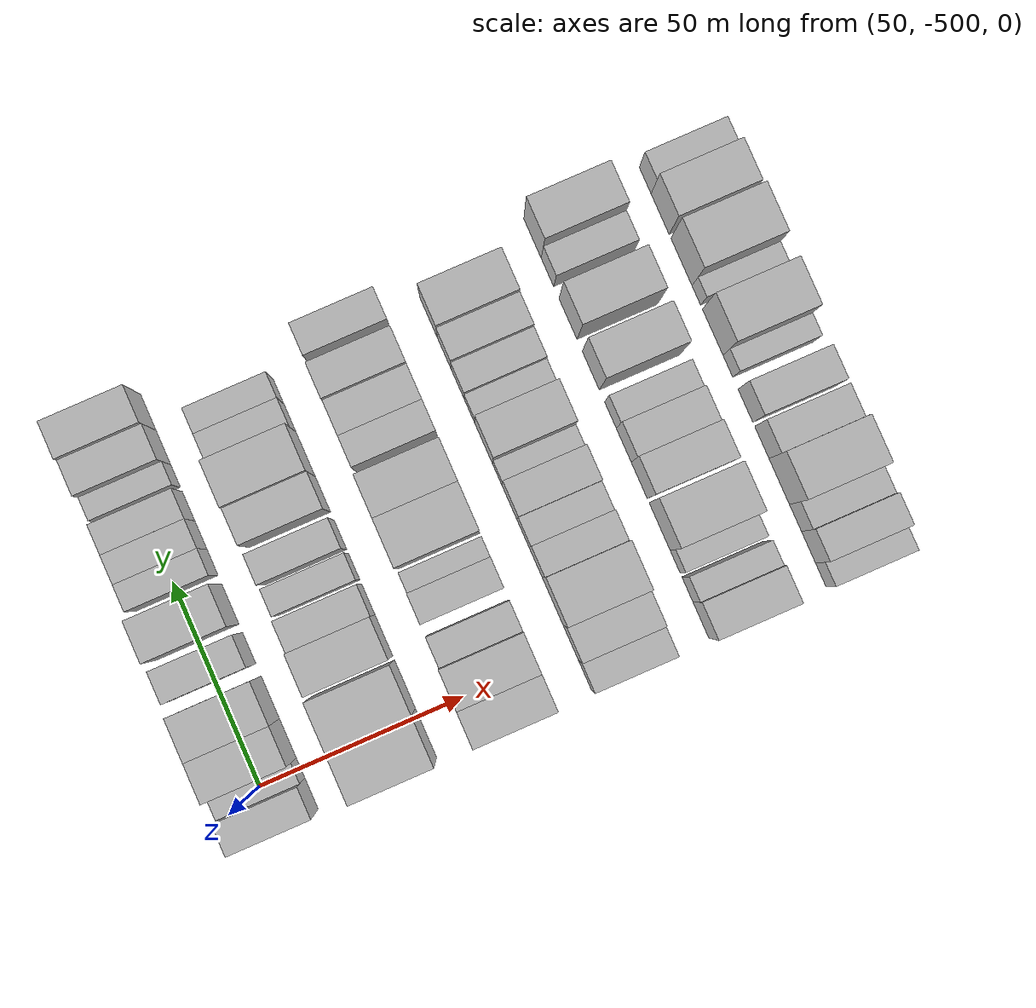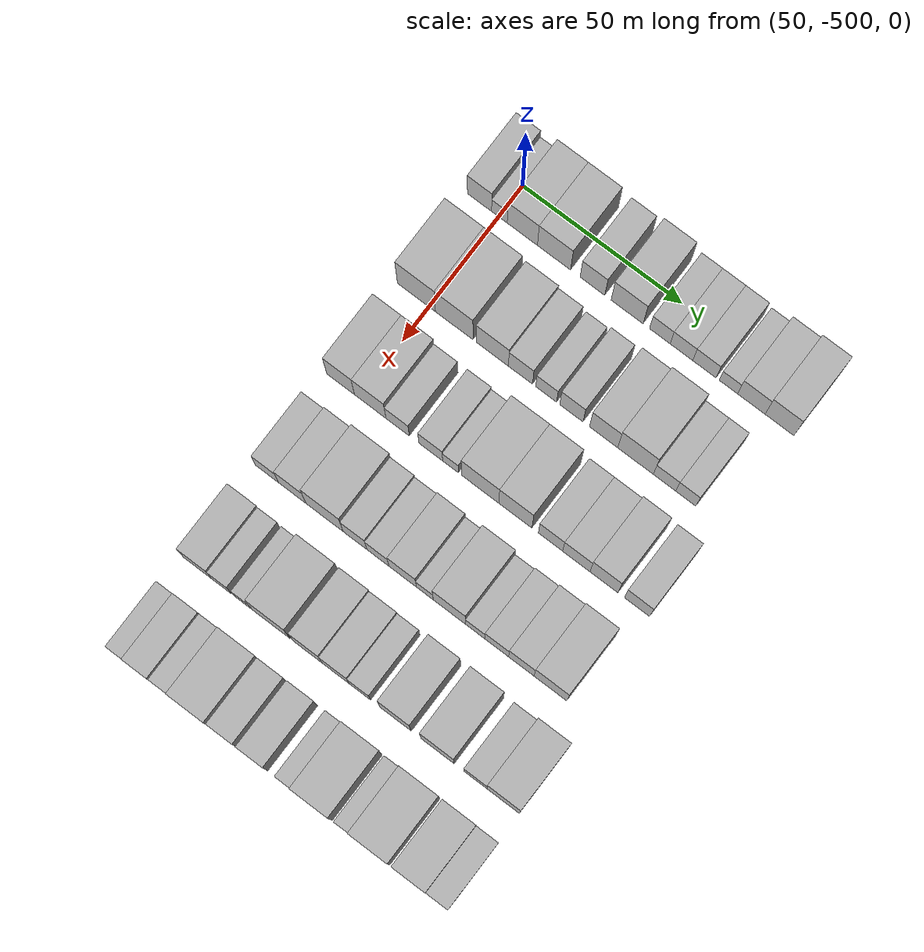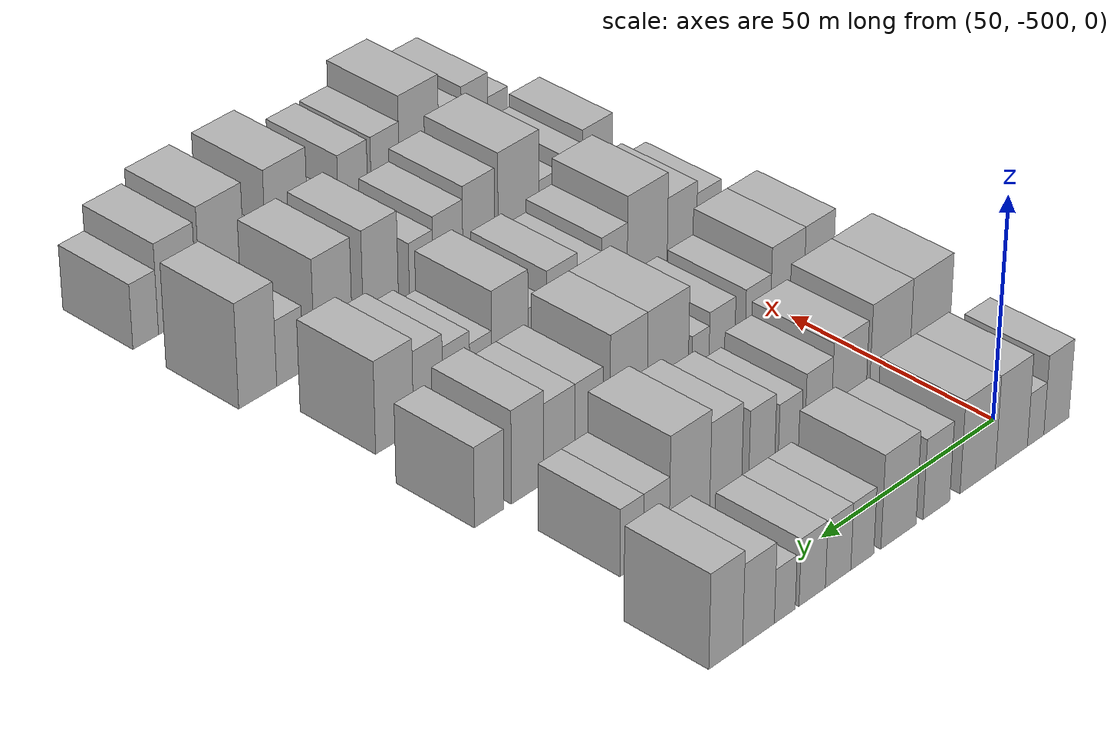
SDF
<sdf version="1.6">
 <world name="default">
  <model name="building_1">
   <static>1</static>
   <pose>50.0000 -506.1923 0 0.000000 0.000000 0.000000</pose>
   <link name="link">
    <pose>0 0 9.00 0 0 0</pose>
    <collision name="collision"><geometry><box><size>20.0000 7.6155 18.0000</size></box></geometry></collision>
    <visual name="visual">
     <cast_shadows>0</cast_shadows>
     <geometry><box><size>20.0000 7.6155 18.0000</size></box></geometry>
     <material>
      <script>
       <uri>model://HANNAS_wall/materials/scripts</uri>
       <uri>model://HANNAS_wall/materials/textures</uri>
       <name>vrc/HANNAS_wall</name>
      </script>
     </material>
    </visual>
   </link>
  </model>
  <model name="building_2">
   <static>1</static>
   <pose>50.0000 -499.9153 0 0.000000 0.000000 0.000000</pose>
   <link name="link">
    <pose>0 0 6.00 0 0 0</pose>
    <collision name="collision"><geometry><box><size>20.0000 4.9384 12.0000</size></box></geometry></collision>
    <visual name="visual">
     <cast_shadows>0</cast_shadows>
     <geometry><box><size>20.0000 4.9384 12.0000</size></box></geometry>
     <material>
      <script>
       <uri>model://HANNAS_wall/materials/scripts</uri>
       <uri>model://HANNAS_wall/materials/textures</uri>
       <name>vrc/HANNAS_wall</name>
      </script>
     </material>
    </visual>
   </link>
  </model>
  <model name="building_3">
   <static>1</static>
   <pose>50.0000 -492.6793 0 0.000000 0.000000 0.000000</pose>
   <link name="link">
    <pose>0 0 10.50 0 0 0</pose>
    <collision name="collision"><geometry><box><size>20.0000 9.5337 21.0000</size></box></geometry></collision>
    <visual name="visual">
     <cast_shadows>0</cast_shadows>
     <geometry><box><size>20.0000 9.5337 21.0000</size></box></geometry>
     <material>
      <script>
       <uri>model://HANNAS_wall/materials/scripts</uri>
       <uri>model://HANNAS_wall/materials/textures</uri>
       <name>vrc/HANNAS_wall</name>
      </script>
     </material>
    </visual>
   </link>
  </model>
  <model name="building_4">
   <static>1</static>
   <pose>50.0000 -482.6955 0 0.000000 0.000000 0.000000</pose>
   <link name="link">
    <pose>0 0 10.50 0 0 0</pose>
    <collision name="collision"><geometry><box><size>20.0000 10.4338 21.0000</size></box></geometry></collision>
    <visual name="visual">
     <cast_shadows>0</cast_shadows>
     <geometry><box><size>20.0000 10.4338 21.0000</size></box></geometry>
     <material>
      <script>
       <uri>model://HANNAS_wall/materials/scripts</uri>
       <uri>model://HANNAS_wall/materials/textures</uri>
       <name>vrc/HANNAS_wall</name>
      </script>
     </material>
    </visual>
   </link>
  </model>
  <model name="building_5">
   <static>1</static>
   <pose>50.0000 -470.6189 0 0.000000 0.000000 0.000000</pose>
   <link name="link">
    <pose>0 0 9.00 0 0 0</pose>
    <collision name="collision"><geometry><box><size>20.0000 7.7194 18.0000</size></box></geometry></collision>
    <visual name="visual">
     <cast_shadows>0</cast_shadows>
     <geometry><box><size>20.0000 7.7194 18.0000</size></box></geometry>
     <material>
      <script>
       <uri>model://HANNAS_wall/materials/scripts</uri>
       <uri>model://HANNAS_wall/materials/textures</uri>
       <name>vrc/HANNAS_wall</name>
      </script>
     </material>
    </visual>
   </link>
  </model>
  <model name="building_6">
   <static>1</static>
   <pose>50.0000 -459.7535 0 0.000000 0.000000 0.000000</pose>
   <link name="link">
    <pose>0 0 10.50 0 0 0</pose>
    <collision name="collision"><geometry><box><size>20.0000 10.0115 21.0000</size></box></geometry></collision>
    <visual name="visual">
     <cast_shadows>0</cast_shadows>
     <geometry><box><size>20.0000 10.0115 21.0000</size></box></geometry>
     <material>
      <script>
       <uri>model://HANNAS_wall/materials/scripts</uri>
       <uri>model://HANNAS_wall/materials/textures</uri>
       <name>vrc/HANNAS_wall</name>
      </script>
     </material>
    </visual>
   </link>
  </model>
  <model name="building_7">
   <static>1</static>
   <pose>50.0000 -449.5261 0 0.000000 0.000000 0.000000</pose>
   <link name="link">
    <pose>0 0 7.50 0 0 0</pose>
    <collision name="collision"><geometry><box><size>20.0000 6.4433 15.0000</size></box></geometry></collision>
    <visual name="visual">
     <cast_shadows>0</cast_shadows>
     <geometry><box><size>20.0000 6.4433 15.0000</size></box></geometry>
     <material>
      <script>
       <uri>model://HANNAS_wall/materials/scripts</uri>
       <uri>model://HANNAS_wall/materials/textures</uri>
       <name>vrc/HANNAS_wall</name>
      </script>
     </material>
    </visual>
   </link>
  </model>
  <model name="building_8">
   <static>1</static>
   <pose>50.0000 -442.7757 0 0.000000 0.000000 0.000000</pose>
   <link name="link">
    <pose>0 0 7.50 0 0 0</pose>
    <collision name="collision"><geometry><box><size>20.0000 7.0575 15.0000</size></box></geometry></collision>
    <visual name="visual">
     <cast_shadows>0</cast_shadows>
     <geometry><box><size>20.0000 7.0575 15.0000</size></box></geometry>
     <material>
      <script>
       <uri>model://HANNAS_wall/materials/scripts</uri>
       <uri>model://HANNAS_wall/materials/textures</uri>
       <name>vrc/HANNAS_wall</name>
      </script>
     </material>
    </visual>
   </link>
  </model>
  <model name="building_9">
   <static>1</static>
   <pose>50.0000 -435.6232 0 0.000000 0.000000 0.000000</pose>
   <link name="link">
    <pose>0 0 7.50 0 0 0</pose>
    <collision name="collision"><geometry><box><size>20.0000 7.2474 15.0000</size></box></geometry></collision>
    <visual name="visual">
     <cast_shadows>0</cast_shadows>
     <geometry><box><size>20.0000 7.2474 15.0000</size></box></geometry>
     <material>
      <script>
       <uri>model://HANNAS_wall/materials/scripts</uri>
       <uri>model://HANNAS_wall/materials/textures</uri>
       <name>vrc/HANNAS_wall</name>
      </script>
     </material>
    </visual>
   </link>
  </model>
  <model name="building_10">
   <static>1</static>
   <pose>50.0000 -428.1598 0 0.000000 0.000000 0.000000</pose>
   <link name="link">
    <pose>0 0 6.00 0 0 0</pose>
    <collision name="collision"><geometry><box><size>20.0000 5.6795 12.0000</size></box></geometry></collision>
    <visual name="visual">
     <cast_shadows>0</cast_shadows>
     <geometry><box><size>20.0000 5.6795 12.0000</size></box></geometry>
     <material>
      <script>
       <uri>model://HANNAS_wall/materials/scripts</uri>
       <uri>model://HANNAS_wall/materials/textures</uri>
       <name>vrc/HANNAS_wall</name>
      </script>
     </material>
    </visual>
   </link>
  </model>
  <model name="building_11">
   <static>1</static>
   <pose>50.0000 -421.0563 0 0.000000 0.000000 0.000000</pose>
   <link name="link">
    <pose>0 0 9.00 0 0 0</pose>
    <collision name="collision"><geometry><box><size>20.0000 8.5275 18.0000</size></box></geometry></collision>
    <visual name="visual">
     <cast_shadows>0</cast_shadows>
     <geometry><box><size>20.0000 8.5275 18.0000</size></box></geometry>
     <material>
      <script>
       <uri>model://HANNAS_wall/materials/scripts</uri>
       <uri>model://HANNAS_wall/materials/textures</uri>
       <name>vrc/HANNAS_wall</name>
      </script>
     </material>
    </visual>
   </link>
  </model>
  <model name="building_12">
   <static>1</static>
   <pose>50.0000 -412.3185 0 0.000000 0.000000 0.000000</pose>
   <link name="link">
    <pose>0 0 10.50 0 0 0</pose>
    <collision name="collision"><geometry><box><size>20.0000 8.9482 21.0000</size></box></geometry></collision>
    <visual name="visual">
     <cast_shadows>0</cast_shadows>
     <geometry><box><size>20.0000 8.9482 21.0000</size></box></geometry>
     <material>
      <script>
       <uri>model://HANNAS_wall/materials/scripts</uri>
       <uri>model://HANNAS_wall/materials/textures</uri>
       <name>vrc/HANNAS_wall</name>
      </script>
     </material>
    </visual>
   </link>
  </model>
  <model name="building_114">
   <static>1</static>
   <pose>79.0000 -504.0109 0 0.000000 0.000000 0.000000</pose>
   <link name="link">
    <pose>0 0 12.00 0 0 0</pose>
    <collision name="collision"><geometry><box><size>20.0000 11.9782 24.0000</size></box></geometry></collision>
    <visual name="visual">
     <cast_shadows>0</cast_shadows>
     <geometry><box><size>20.0000 11.9782 24.0000</size></box></geometry>
     <material>
      <script>
       <uri>model://HANNAS_wall/materials/scripts</uri>
       <uri>model://HANNAS_wall/materials/textures</uri>
       <name>vrc/HANNAS_wall</name>
      </script>
     </material>
    </visual>
   </link>
  </model>
  <model name="building_115">
   <static>1</static>
   <pose>79.0000 -492.1073 0 0.000000 0.000000 0.000000</pose>
   <link name="link">
    <pose>0 0 12.00 0 0 0</pose>
    <collision name="collision"><geometry><box><size>20.0000 11.8289 24.0000</size></box></geometry></collision>
    <visual name="visual">
     <cast_shadows>0</cast_shadows>
     <geometry><box><size>20.0000 11.8289 24.0000</size></box></geometry>
     <material>
      <script>
       <uri>model://HANNAS_wall/materials/scripts</uri>
       <uri>model://HANNAS_wall/materials/textures</uri>
       <name>vrc/HANNAS_wall</name>
      </script>
     </material>
    </visual>
   </link>
  </model>
  <model name="building_116">
   <static>1</static>
   <pose>79.0000 -480.1477 0 0.000000 0.000000 0.000000</pose>
   <link name="link">
    <pose>0 0 10.50 0 0 0</pose>
    <collision name="collision"><geometry><box><size>20.0000 10.0904 21.0000</size></box></geometry></collision>
    <visual name="visual">
     <cast_shadows>0</cast_shadows>
     <geometry><box><size>20.0000 10.0904 21.0000</size></box></geometry>
     <material>
      <script>
       <uri>model://HANNAS_wall/materials/scripts</uri>
       <uri>model://HANNAS_wall/materials/textures</uri>
       <name>vrc/HANNAS_wall</name>
      </script>
     </material>
    </visual>
   </link>
  </model>
  <model name="building_117">
   <static>1</static>
   <pose>79.0000 -471.3173 0 0.000000 0.000000 0.000000</pose>
   <link name="link">
    <pose>0 0 9.00 0 0 0</pose>
    <collision name="collision"><geometry><box><size>20.0000 7.5705 18.0000</size></box></geometry></collision>
    <visual name="visual">
     <cast_shadows>0</cast_shadows>
     <geometry><box><size>20.0000 7.5705 18.0000</size></box></geometry>
     <material>
      <script>
       <uri>model://HANNAS_wall/materials/scripts</uri>
       <uri>model://HANNAS_wall/materials/textures</uri>
       <name>vrc/HANNAS_wall</name>
      </script>
     </material>
    </visual>
   </link>
  </model>
  <model name="building_118">
   <static>1</static>
   <pose>79.0000 -463.2756 0 0.000000 0.000000 0.000000</pose>
   <link name="link">
    <pose>0 0 7.50 0 0 0</pose>
    <collision name="collision"><geometry><box><size>20.0000 6.5127 15.0000</size></box></geometry></collision>
    <visual name="visual">
     <cast_shadows>0</cast_shadows>
     <geometry><box><size>20.0000 6.5127 15.0000</size></box></geometry>
     <material>
      <script>
       <uri>model://HANNAS_wall/materials/scripts</uri>
       <uri>model://HANNAS_wall/materials/textures</uri>
       <name>vrc/HANNAS_wall</name>
      </script>
     </material>
    </visual>
   </link>
  </model>
  <model name="building_119">
   <static>1</static>
   <pose>79.0000 -455.3851 0 0.000000 0.000000 0.000000</pose>
   <link name="link">
    <pose>0 0 9.00 0 0 0</pose>
    <collision name="collision"><geometry><box><size>20.0000 7.2683 18.0000</size></box></geometry></collision>
    <visual name="visual">
     <cast_shadows>0</cast_shadows>
     <geometry><box><size>20.0000 7.2683 18.0000</size></box></geometry>
     <material>
      <script>
       <uri>model://HANNAS_wall/materials/scripts</uri>
       <uri>model://HANNAS_wall/materials/textures</uri>
       <name>vrc/HANNAS_wall</name>
      </script>
     </material>
    </visual>
   </link>
  </model>
  <model name="building_120">
   <static>1</static>
   <pose>79.0000 -445.3543 0 0.000000 0.000000 0.000000</pose>
   <link name="link">
    <pose>0 0 10.50 0 0 0</pose>
    <collision name="collision"><geometry><box><size>20.0000 8.7933 21.0000</size></box></geometry></collision>
    <visual name="visual">
     <cast_shadows>0</cast_shadows>
     <geometry><box><size>20.0000 8.7933 21.0000</size></box></geometry>
     <material>
      <script>
       <uri>model://HANNAS_wall/materials/scripts</uri>
       <uri>model://HANNAS_wall/materials/textures</uri>
       <name>vrc/HANNAS_wall</name>
      </script>
     </material>
    </visual>
   </link>
  </model>
  <model name="building_121">
   <static>1</static>
   <pose>79.0000 -435.4338 0 0.000000 0.000000 0.000000</pose>
   <link name="link">
    <pose>0 0 12.00 0 0 0</pose>
    <collision name="collision"><geometry><box><size>20.0000 11.0478 24.0000</size></box></geometry></collision>
    <visual name="visual">
     <cast_shadows>0</cast_shadows>
     <geometry><box><size>20.0000 11.0478 24.0000</size></box></geometry>
     <material>
      <script>
       <uri>model://HANNAS_wall/materials/scripts</uri>
       <uri>model://HANNAS_wall/materials/textures</uri>
       <name>vrc/HANNAS_wall</name>
      </script>
     </material>
    </visual>
   </link>
  </model>
  <model name="building_122">
   <static>1</static>
   <pose>79.0000 -426.4229 0 0.000000 0.000000 0.000000</pose>
   <link name="link">
    <pose>0 0 7.50 0 0 0</pose>
    <collision name="collision"><geometry><box><size>20.0000 6.9740 15.0000</size></box></geometry></collision>
    <visual name="visual">
     <cast_shadows>0</cast_shadows>
     <geometry><box><size>20.0000 6.9740 15.0000</size></box></geometry>
     <material>
      <script>
       <uri>model://HANNAS_wall/materials/scripts</uri>
       <uri>model://HANNAS_wall/materials/textures</uri>
       <name>vrc/HANNAS_wall</name>
      </script>
     </material>
    </visual>
   </link>
  </model>
  <model name="building_123">
   <static>1</static>
   <pose>79.0000 -419.8304 0 0.000000 0.000000 0.000000</pose>
   <link name="link">
    <pose>0 0 7.50 0 0 0</pose>
    <collision name="collision"><geometry><box><size>20.0000 6.2111 15.0000</size></box></geometry></collision>
    <visual name="visual">
     <cast_shadows>0</cast_shadows>
     <geometry><box><size>20.0000 6.2111 15.0000</size></box></geometry>
     <material>
      <script>
       <uri>model://HANNAS_wall/materials/scripts</uri>
       <uri>model://HANNAS_wall/materials/textures</uri>
       <name>vrc/HANNAS_wall</name>
      </script>
     </material>
    </visual>
   </link>
  </model>
  <model name="building_222">
   <static>1</static>
   <pose>108.0000 -505.6235 0 0.000000 0.000000 0.000000</pose>
   <link name="link">
    <pose>0 0 10.50 0 0 0</pose>
    <collision name="collision"><geometry><box><size>20.0000 8.7530 21.0000</size></box></geometry></collision>
    <visual name="visual">
     <cast_shadows>0</cast_shadows>
     <geometry><box><size>20.0000 8.7530 21.0000</size></box></geometry>
     <material>
      <script>
       <uri>model://HANNAS_wall/materials/scripts</uri>
       <uri>model://HANNAS_wall/materials/textures</uri>
       <name>vrc/HANNAS_wall</name>
      </script>
     </material>
    </visual>
   </link>
  </model>
  <model name="building_223">
   <static>1</static>
   <pose>108.0000 -496.3201 0 0.000000 0.000000 0.000000</pose>
   <link name="link">
    <pose>0 0 10.50 0 0 0</pose>
    <collision name="collision"><geometry><box><size>20.0000 9.8538 21.0000</size></box></geometry></collision>
    <visual name="visual">
     <cast_shadows>0</cast_shadows>
     <geometry><box><size>20.0000 9.8538 21.0000</size></box></geometry>
     <material>
      <script>
       <uri>model://HANNAS_wall/materials/scripts</uri>
       <uri>model://HANNAS_wall/materials/textures</uri>
       <name>vrc/HANNAS_wall</name>
      </script>
     </material>
    </visual>
   </link>
  </model>
  <model name="building_224">
   <static>1</static>
   <pose>108.0000 -487.7273 0 0.000000 0.000000 0.000000</pose>
   <link name="link">
    <pose>0 0 7.50 0 0 0</pose>
    <collision name="collision"><geometry><box><size>20.0000 7.3318 15.0000</size></box></geometry></collision>
    <visual name="visual">
     <cast_shadows>0</cast_shadows>
     <geometry><box><size>20.0000 7.3318 15.0000</size></box></geometry>
     <material>
      <script>
       <uri>model://HANNAS_wall/materials/scripts</uri>
       <uri>model://HANNAS_wall/materials/textures</uri>
       <name>vrc/HANNAS_wall</name>
      </script>
     </material>
    </visual>
   </link>
  </model>
  <model name="building_225">
   <static>1</static>
   <pose>108.0000 -477.3466 0 0.000000 0.000000 0.000000</pose>
   <link name="link">
    <pose>0 0 7.50 0 0 0</pose>
    <collision name="collision"><geometry><box><size>20.0000 7.4294 15.0000</size></box></geometry></collision>
    <visual name="visual">
     <cast_shadows>0</cast_shadows>
     <geometry><box><size>20.0000 7.4294 15.0000</size></box></geometry>
     <material>
      <script>
       <uri>model://HANNAS_wall/materials/scripts</uri>
       <uri>model://HANNAS_wall/materials/textures</uri>
       <name>vrc/HANNAS_wall</name>
      </script>
     </material>
    </visual>
   </link>
  </model>
  <model name="building_226">
   <static>1</static>
   <pose>108.0000 -471.1668 0 0.000000 0.000000 0.000000</pose>
   <link name="link">
    <pose>0 0 6.00 0 0 0</pose>
    <collision name="collision"><geometry><box><size>20.0000 4.9303 12.0000</size></box></geometry></collision>
    <visual name="visual">
     <cast_shadows>0</cast_shadows>
     <geometry><box><size>20.0000 4.9303 12.0000</size></box></geometry>
     <material>
      <script>
       <uri>model://HANNAS_wall/materials/scripts</uri>
       <uri>model://HANNAS_wall/materials/textures</uri>
       <name>vrc/HANNAS_wall</name>
      </script>
     </material>
    </visual>
   </link>
  </model>
  <model name="building_227">
   <static>1</static>
   <pose>108.0000 -461.8960 0 0.000000 0.000000 0.000000</pose>
   <link name="link">
    <pose>0 0 12.00 0 0 0</pose>
    <collision name="collision"><geometry><box><size>20.0000 11.6113 24.0000</size></box></geometry></collision>
    <visual name="visual">
     <cast_shadows>0</cast_shadows>
     <geometry><box><size>20.0000 11.6113 24.0000</size></box></geometry>
     <material>
      <script>
       <uri>model://HANNAS_wall/materials/scripts</uri>
       <uri>model://HANNAS_wall/materials/textures</uri>
       <name>vrc/HANNAS_wall</name>
      </script>
     </material>
    </visual>
   </link>
  </model>
  <model name="building_228">
   <static>1</static>
   <pose>108.0000 -450.9481 0 0.000000 0.000000 0.000000</pose>
   <link name="link">
    <pose>0 0 12.00 0 0 0</pose>
    <collision name="collision"><geometry><box><size>20.0000 10.2844 24.0000</size></box></geometry></collision>
    <visual name="visual">
     <cast_shadows>0</cast_shadows>
     <geometry><box><size>20.0000 10.2844 24.0000</size></box></geometry>
     <material>
      <script>
       <uri>model://HANNAS_wall/materials/scripts</uri>
       <uri>model://HANNAS_wall/materials/textures</uri>
       <name>vrc/HANNAS_wall</name>
      </script>
     </material>
    </visual>
   </link>
  </model>
  <model name="building_229">
   <static>1</static>
   <pose>108.0000 -440.0445 0 0.000000 0.000000 0.000000</pose>
   <link name="link">
    <pose>0 0 9.00 0 0 0</pose>
    <collision name="collision"><geometry><box><size>20.0000 7.5227 18.0000</size></box></geometry></collision>
    <visual name="visual">
     <cast_shadows>0</cast_shadows>
     <geometry><box><size>20.0000 7.5227 18.0000</size></box></geometry>
     <material>
      <script>
       <uri>model://HANNAS_wall/materials/scripts</uri>
       <uri>model://HANNAS_wall/materials/textures</uri>
       <name>vrc/HANNAS_wall</name>
      </script>
     </material>
    </visual>
   </link>
  </model>
  <model name="building_230">
   <static>1</static>
   <pose>108.0000 -432.0351 0 0.000000 0.000000 0.000000</pose>
   <link name="link">
    <pose>0 0 9.00 0 0 0</pose>
    <collision name="collision"><geometry><box><size>20.0000 8.4962 18.0000</size></box></geometry></collision>
    <visual name="visual">
     <cast_shadows>0</cast_shadows>
     <geometry><box><size>20.0000 8.4962 18.0000</size></box></geometry>
     <material>
      <script>
       <uri>model://HANNAS_wall/materials/scripts</uri>
       <uri>model://HANNAS_wall/materials/textures</uri>
       <name>vrc/HANNAS_wall</name>
      </script>
     </material>
    </visual>
   </link>
  </model>
  <model name="building_231">
   <static>1</static>
   <pose>108.0000 -423.4757 0 0.000000 0.000000 0.000000</pose>
   <link name="link">
    <pose>0 0 10.50 0 0 0</pose>
    <collision name="collision"><geometry><box><size>20.0000 8.6224 21.0000</size></box></geometry></collision>
    <visual name="visual">
     <cast_shadows>0</cast_shadows>
     <geometry><box><size>20.0000 8.6224 21.0000</size></box></geometry>
     <material>
      <script>
       <uri>model://HANNAS_wall/materials/scripts</uri>
       <uri>model://HANNAS_wall/materials/textures</uri>
       <name>vrc/HANNAS_wall</name>
      </script>
     </material>
    </visual>
   </link>
  </model>
  <model name="building_232">
   <static>1</static>
   <pose>108.0000 -413.2820 0 0.000000 0.000000 0.000000</pose>
   <link name="link">
    <pose>0 0 9.00 0 0 0</pose>
    <collision name="collision"><geometry><box><size>20.0000 7.7651 18.0000</size></box></geometry></collision>
    <visual name="visual">
     <cast_shadows>0</cast_shadows>
     <geometry><box><size>20.0000 7.7651 18.0000</size></box></geometry>
     <material>
      <script>
       <uri>model://HANNAS_wall/materials/scripts</uri>
       <uri>model://HANNAS_wall/materials/textures</uri>
       <name>vrc/HANNAS_wall</name>
      </script>
     </material>
    </visual>
   </link>
  </model>
  <model name="building_332">
   <static>1</static>
   <pose>137.0000 -506.4004 0 0.000000 0.000000 0.000000</pose>
   <link name="link">
    <pose>0 0 7.50 0 0 0</pose>
    <collision name="collision"><geometry><box><size>20.0000 7.1993 15.0000</size></box></geometry></collision>
    <visual name="visual">
     <cast_shadows>0</cast_shadows>
     <geometry><box><size>20.0000 7.1993 15.0000</size></box></geometry>
     <material>
      <script>
       <uri>model://HANNAS_wall/materials/scripts</uri>
       <uri>model://HANNAS_wall/materials/textures</uri>
       <name>vrc/HANNAS_wall</name>
      </script>
     </material>
    </visual>
   </link>
  </model>
  <model name="building_333">
   <static>1</static>
   <pose>137.0000 -498.4873 0 0.000000 0.000000 0.000000</pose>
   <link name="link">
    <pose>0 0 9.00 0 0 0</pose>
    <collision name="collision"><geometry><box><size>20.0000 8.6269 18.0000</size></box></geometry></collision>
    <visual name="visual">
     <cast_shadows>0</cast_shadows>
     <geometry><box><size>20.0000 8.6269 18.0000</size></box></geometry>
     <material>
      <script>
       <uri>model://HANNAS_wall/materials/scripts</uri>
       <uri>model://HANNAS_wall/materials/textures</uri>
       <name>vrc/HANNAS_wall</name>
      </script>
     </material>
    </visual>
   </link>
  </model>
  <model name="building_334">
   <static>1</static>
   <pose>137.0000 -488.3324 0 0.000000 0.000000 0.000000</pose>
   <link name="link">
    <pose>0 0 12.00 0 0 0</pose>
    <collision name="collision"><geometry><box><size>20.0000 11.6829 24.0000</size></box></geometry></collision>
    <visual name="visual">
     <cast_shadows>0</cast_shadows>
     <geometry><box><size>20.0000 11.6829 24.0000</size></box></geometry>
     <material>
      <script>
       <uri>model://HANNAS_wall/materials/scripts</uri>
       <uri>model://HANNAS_wall/materials/textures</uri>
       <name>vrc/HANNAS_wall</name>
      </script>
     </material>
    </visual>
   </link>
  </model>
  <model name="building_335">
   <static>1</static>
   <pose>137.0000 -478.8085 0 0.000000 0.000000 0.000000</pose>
   <link name="link">
    <pose>0 0 9.00 0 0 0</pose>
    <collision name="collision"><geometry><box><size>20.0000 7.3648 18.0000</size></box></geometry></collision>
    <visual name="visual">
     <cast_shadows>0</cast_shadows>
     <geometry><box><size>20.0000 7.3648 18.0000</size></box></geometry>
     <material>
      <script>
       <uri>model://HANNAS_wall/materials/scripts</uri>
       <uri>model://HANNAS_wall/materials/textures</uri>
       <name>vrc/HANNAS_wall</name>
      </script>
     </material>
    </visual>
   </link>
  </model>
  <model name="building_336">
   <static>1</static>
   <pose>137.0000 -471.6565 0 0.000000 0.000000 0.000000</pose>
   <link name="link">
    <pose>0 0 7.50 0 0 0</pose>
    <collision name="collision"><geometry><box><size>20.0000 6.9392 15.0000</size></box></geometry></collision>
    <visual name="visual">
     <cast_shadows>0</cast_shadows>
     <geometry><box><size>20.0000 6.9392 15.0000</size></box></geometry>
     <material>
      <script>
       <uri>model://HANNAS_wall/materials/scripts</uri>
       <uri>model://HANNAS_wall/materials/textures</uri>
       <name>vrc/HANNAS_wall</name>
      </script>
     </material>
    </visual>
   </link>
  </model>
  <model name="building_337">
   <static>1</static>
   <pose>137.0000 -463.9197 0 0.000000 0.000000 0.000000</pose>
   <link name="link">
    <pose>0 0 9.00 0 0 0</pose>
    <collision name="collision"><geometry><box><size>20.0000 8.5343 18.0000</size></box></geometry></collision>
    <visual name="visual">
     <cast_shadows>0</cast_shadows>
     <geometry><box><size>20.0000 8.5343 18.0000</size></box></geometry>
     <material>
      <script>
       <uri>model://HANNAS_wall/materials/scripts</uri>
       <uri>model://HANNAS_wall/materials/textures</uri>
       <name>vrc/HANNAS_wall</name>
      </script>
     </material>
    </visual>
   </link>
  </model>
  <model name="building_338">
   <static>1</static>
   <pose>137.0000 -457.0420 0 0.000000 0.000000 0.000000</pose>
   <link name="link">
    <pose>0 0 6.00 0 0 0</pose>
    <collision name="collision"><geometry><box><size>20.0000 5.2211 12.0000</size></box></geometry></collision>
    <visual name="visual">
     <cast_shadows>0</cast_shadows>
     <geometry><box><size>20.0000 5.2211 12.0000</size></box></geometry>
     <material>
      <script>
       <uri>model://HANNAS_wall/materials/scripts</uri>
       <uri>model://HANNAS_wall/materials/textures</uri>
       <name>vrc/HANNAS_wall</name>
      </script>
     </material>
    </visual>
   </link>
  </model>
  <model name="building_339">
   <static>1</static>
   <pose>137.0000 -449.4122 0 0.000000 0.000000 0.000000</pose>
   <link name="link">
    <pose>0 0 10.50 0 0 0</pose>
    <collision name="collision"><geometry><box><size>20.0000 10.0385 21.0000</size></box></geometry></collision>
    <visual name="visual">
     <cast_shadows>0</cast_shadows>
     <geometry><box><size>20.0000 10.0385 21.0000</size></box></geometry>
     <material>
      <script>
       <uri>model://HANNAS_wall/materials/scripts</uri>
       <uri>model://HANNAS_wall/materials/textures</uri>
       <name>vrc/HANNAS_wall</name>
      </script>
     </material>
    </visual>
   </link>
  </model>
  <model name="building_340">
   <static>1</static>
   <pose>137.0000 -441.4139 0 0.000000 0.000000 0.000000</pose>
   <link name="link">
    <pose>0 0 6.00 0 0 0</pose>
    <collision name="collision"><geometry><box><size>20.0000 5.9579 12.0000</size></box></geometry></collision>
    <visual name="visual">
     <cast_shadows>0</cast_shadows>
     <geometry><box><size>20.0000 5.9579 12.0000</size></box></geometry>
     <material>
      <script>
       <uri>model://HANNAS_wall/materials/scripts</uri>
       <uri>model://HANNAS_wall/materials/textures</uri>
       <name>vrc/HANNAS_wall</name>
      </script>
     </material>
    </visual>
   </link>
  </model>
  <model name="building_341">
   <static>1</static>
   <pose>137.0000 -434.7728 0 0.000000 0.000000 0.000000</pose>
   <link name="link">
    <pose>0 0 7.50 0 0 0</pose>
    <collision name="collision"><geometry><box><size>20.0000 7.3243 15.0000</size></box></geometry></collision>
    <visual name="visual">
     <cast_shadows>0</cast_shadows>
     <geometry><box><size>20.0000 7.3243 15.0000</size></box></geometry>
     <material>
      <script>
       <uri>model://HANNAS_wall/materials/scripts</uri>
       <uri>model://HANNAS_wall/materials/textures</uri>
       <name>vrc/HANNAS_wall</name>
      </script>
     </material>
    </visual>
   </link>
  </model>
  <model name="building_342">
   <static>1</static>
   <pose>137.0000 -427.1685 0 0.000000 0.000000 0.000000</pose>
   <link name="link">
    <pose>0 0 9.00 0 0 0</pose>
    <collision name="collision"><geometry><box><size>20.0000 7.8843 18.0000</size></box></geometry></collision>
    <visual name="visual">
     <cast_shadows>0</cast_shadows>
     <geometry><box><size>20.0000 7.8843 18.0000</size></box></geometry>
     <material>
      <script>
       <uri>model://HANNAS_wall/materials/scripts</uri>
       <uri>model://HANNAS_wall/materials/textures</uri>
       <name>vrc/HANNAS_wall</name>
      </script>
     </material>
    </visual>
   </link>
  </model>
  <model name="building_343">
   <static>1</static>
   <pose>137.0000 -418.1867 0 0.000000 0.000000 0.000000</pose>
   <link name="link">
    <pose>0 0 10.50 0 0 0</pose>
    <collision name="collision"><geometry><box><size>20.0000 10.0793 21.0000</size></box></geometry></collision>
    <visual name="visual">
     <cast_shadows>0</cast_shadows>
     <geometry><box><size>20.0000 10.0793 21.0000</size></box></geometry>
     <material>
      <script>
       <uri>model://HANNAS_wall/materials/scripts</uri>
       <uri>model://HANNAS_wall/materials/textures</uri>
       <name>vrc/HANNAS_wall</name>
      </script>
     </material>
    </visual>
   </link>
  </model>
  <model name="building_443">
   <static>1</static>
   <pose>166.0000 -505.5221 0 0.000000 0.000000 0.000000</pose>
   <link name="link">
    <pose>0 0 9.00 0 0 0</pose>
    <collision name="collision"><geometry><box><size>20.0000 8.9558 18.0000</size></box></geometry></collision>
    <visual name="visual">
     <cast_shadows>0</cast_shadows>
     <geometry><box><size>20.0000 8.9558 18.0000</size></box></geometry>
     <material>
      <script>
       <uri>model://HANNAS_wall/materials/scripts</uri>
       <uri>model://HANNAS_wall/materials/textures</uri>
       <name>vrc/HANNAS_wall</name>
      </script>
     </material>
    </visual>
   </link>
  </model>
  <model name="building_444">
   <static>1</static>
   <pose>166.0000 -498.0125 0 0.000000 0.000000 0.000000</pose>
   <link name="link">
    <pose>0 0 7.50 0 0 0</pose>
    <collision name="collision"><geometry><box><size>20.0000 6.0635 15.0000</size></box></geometry></collision>
    <visual name="visual">
     <cast_shadows>0</cast_shadows>
     <geometry><box><size>20.0000 6.0635 15.0000</size></box></geometry>
     <material>
      <script>
       <uri>model://HANNAS_wall/materials/scripts</uri>
       <uri>model://HANNAS_wall/materials/textures</uri>
       <name>vrc/HANNAS_wall</name>
      </script>
     </material>
    </visual>
   </link>
  </model>
  <model name="building_445">
   <static>1</static>
   <pose>166.0000 -491.2083 0 0.000000 0.000000 0.000000</pose>
   <link name="link">
    <pose>0 0 6.00 0 0 0</pose>
    <collision name="collision"><geometry><box><size>20.0000 5.5449 12.0000</size></box></geometry></collision>
    <visual name="visual">
     <cast_shadows>0</cast_shadows>
     <geometry><box><size>20.0000 5.5449 12.0000</size></box></geometry>
     <material>
      <script>
       <uri>model://HANNAS_wall/materials/scripts</uri>
       <uri>model://HANNAS_wall/materials/textures</uri>
       <name>vrc/HANNAS_wall</name>
      </script>
     </material>
    </visual>
   </link>
  </model>
  <model name="building_446">
   <static>1</static>
   <pose>166.0000 -482.5529 0 0.000000 0.000000 0.000000</pose>
   <link name="link">
    <pose>0 0 12.00 0 0 0</pose>
    <collision name="collision"><geometry><box><size>20.0000 11.7659 24.0000</size></box></geometry></collision>
    <visual name="visual">
     <cast_shadows>0</cast_shadows>
     <geometry><box><size>20.0000 11.7659 24.0000</size></box></geometry>
     <material>
      <script>
       <uri>model://HANNAS_wall/materials/scripts</uri>
       <uri>model://HANNAS_wall/materials/textures</uri>
       <name>vrc/HANNAS_wall</name>
      </script>
     </material>
    </visual>
   </link>
  </model>
  <model name="building_447">
   <static>1</static>
   <pose>166.0000 -471.1611 0 0.000000 0.000000 0.000000</pose>
   <link name="link">
    <pose>0 0 10.50 0 0 0</pose>
    <collision name="collision"><geometry><box><size>20.0000 9.0177 21.0000</size></box></geometry></collision>
    <visual name="visual">
     <cast_shadows>0</cast_shadows>
     <geometry><box><size>20.0000 9.0177 21.0000</size></box></geometry>
     <material>
      <script>
       <uri>model://HANNAS_wall/materials/scripts</uri>
       <uri>model://HANNAS_wall/materials/textures</uri>
       <name>vrc/HANNAS_wall</name>
      </script>
     </material>
    </visual>
   </link>
  </model>
  <model name="building_448">
   <static>1</static>
   <pose>166.0000 -462.4472 0 0.000000 0.000000 0.000000</pose>
   <link name="link">
    <pose>0 0 9.00 0 0 0</pose>
    <collision name="collision"><geometry><box><size>20.0000 8.4101 18.0000</size></box></geometry></collision>
    <visual name="visual">
     <cast_shadows>0</cast_shadows>
     <geometry><box><size>20.0000 8.4101 18.0000</size></box></geometry>
     <material>
      <script>
       <uri>model://HANNAS_wall/materials/scripts</uri>
       <uri>model://HANNAS_wall/materials/textures</uri>
       <name>vrc/HANNAS_wall</name>
      </script>
     </material>
    </visual>
   </link>
  </model>
  <model name="building_449">
   <static>1</static>
   <pose>166.0000 -454.9548 0 0.000000 0.000000 0.000000</pose>
   <link name="link">
    <pose>0 0 7.50 0 0 0</pose>
    <collision name="collision"><geometry><box><size>20.0000 6.5746 15.0000</size></box></geometry></collision>
    <visual name="visual">
     <cast_shadows>0</cast_shadows>
     <geometry><box><size>20.0000 6.5746 15.0000</size></box></geometry>
     <material>
      <script>
       <uri>model://HANNAS_wall/materials/scripts</uri>
       <uri>model://HANNAS_wall/materials/textures</uri>
       <name>vrc/HANNAS_wall</name>
      </script>
     </material>
    </visual>
   </link>
  </model>
  <model name="building_450">
   <static>1</static>
   <pose>166.0000 -443.8571 0 0.000000 0.000000 0.000000</pose>
   <link name="link">
    <pose>0 0 12.00 0 0 0</pose>
    <collision name="collision"><geometry><box><size>20.0000 9.6209 24.0000</size></box></geometry></collision>
    <visual name="visual">
     <cast_shadows>0</cast_shadows>
     <geometry><box><size>20.0000 9.6209 24.0000</size></box></geometry>
     <material>
      <script>
       <uri>model://HANNAS_wall/materials/scripts</uri>
       <uri>model://HANNAS_wall/materials/textures</uri>
       <name>vrc/HANNAS_wall</name>
      </script>
     </material>
    </visual>
   </link>
  </model>
  <model name="building_451">
   <static>1</static>
   <pose>166.0000 -430.9469 0 0.000000 0.000000 0.000000</pose>
   <link name="link">
    <pose>0 0 12.00 0 0 0</pose>
    <collision name="collision"><geometry><box><size>20.0000 10.1994 24.0000</size></box></geometry></collision>
    <visual name="visual">
     <cast_shadows>0</cast_shadows>
     <geometry><box><size>20.0000 10.1994 24.0000</size></box></geometry>
     <material>
      <script>
       <uri>model://HANNAS_wall/materials/scripts</uri>
       <uri>model://HANNAS_wall/materials/textures</uri>
       <name>vrc/HANNAS_wall</name>
      </script>
     </material>
    </visual>
   </link>
  </model>
  <model name="building_452">
   <static>1</static>
   <pose>166.0000 -419.2996 0 0.000000 0.000000 0.000000</pose>
   <link name="link">
    <pose>0 0 7.50 0 0 0</pose>
    <collision name="collision"><geometry><box><size>20.0000 7.0952 15.0000</size></box></geometry></collision>
    <visual name="visual">
     <cast_shadows>0</cast_shadows>
     <geometry><box><size>20.0000 7.0952 15.0000</size></box></geometry>
     <material>
      <script>
       <uri>model://HANNAS_wall/materials/scripts</uri>
       <uri>model://HANNAS_wall/materials/textures</uri>
       <name>vrc/HANNAS_wall</name>
      </script>
     </material>
    </visual>
   </link>
  </model>
  <model name="building_453">
   <static>1</static>
   <pose>166.0000 -410.7715 0 0.000000 0.000000 0.000000</pose>
   <link name="link">
    <pose>0 0 12.00 0 0 0</pose>
    <collision name="collision"><geometry><box><size>20.0000 9.9610 24.0000</size></box></geometry></collision>
    <visual name="visual">
     <cast_shadows>0</cast_shadows>
     <geometry><box><size>20.0000 9.9610 24.0000</size></box></geometry>
     <material>
      <script>
       <uri>model://HANNAS_wall/materials/scripts</uri>
       <uri>model://HANNAS_wall/materials/textures</uri>
       <name>vrc/HANNAS_wall</name>
      </script>
     </material>
    </visual>
   </link>
  </model>
  <model name="building_563">
   <static>1</static>
   <pose>195.0000 -507.0620 0 0.000000 0.000000 0.000000</pose>
   <link name="link">
    <pose>0 0 6.00 0 0 0</pose>
    <collision name="collision"><geometry><box><size>20.0000 5.8760 12.0000</size></box></geometry></collision>
    <visual name="visual">
     <cast_shadows>0</cast_shadows>
     <geometry><box><size>20.0000 5.8760 12.0000</size></box></geometry>
     <material>
      <script>
       <uri>model://HANNAS_wall/materials/scripts</uri>
       <uri>model://HANNAS_wall/materials/textures</uri>
       <name>vrc/HANNAS_wall</name>
      </script>
     </material>
    </visual>
   </link>
  </model>
  <model name="building_564">
   <static>1</static>
   <pose>195.0000 -500.2535 0 0.000000 0.000000 0.000000</pose>
   <link name="link">
    <pose>0 0 9.00 0 0 0</pose>
    <collision name="collision"><geometry><box><size>20.0000 7.7411 18.0000</size></box></geometry></collision>
    <visual name="visual">
     <cast_shadows>0</cast_shadows>
     <geometry><box><size>20.0000 7.7411 18.0000</size></box></geometry>
     <material>
      <script>
       <uri>model://HANNAS_wall/materials/scripts</uri>
       <uri>model://HANNAS_wall/materials/textures</uri>
       <name>vrc/HANNAS_wall</name>
      </script>
     </material>
    </visual>
   </link>
  </model>
  <model name="building_565">
   <static>1</static>
   <pose>195.0000 -493.0587 0 0.000000 0.000000 0.000000</pose>
   <link name="link">
    <pose>0 0 7.50 0 0 0</pose>
    <collision name="collision"><geometry><box><size>20.0000 6.6483 15.0000</size></box></geometry></collision>
    <visual name="visual">
     <cast_shadows>0</cast_shadows>
     <geometry><box><size>20.0000 6.6483 15.0000</size></box></geometry>
     <material>
      <script>
       <uri>model://HANNAS_wall/materials/scripts</uri>
       <uri>model://HANNAS_wall/materials/textures</uri>
       <name>vrc/HANNAS_wall</name>
      </script>
     </material>
    </visual>
   </link>
  </model>
  <model name="building_566">
   <static>1</static>
   <pose>195.0000 -484.0537 0 0.000000 0.000000 0.000000</pose>
   <link name="link">
    <pose>0 0 12.00 0 0 0</pose>
    <collision name="collision"><geometry><box><size>20.0000 11.3618 24.0000</size></box></geometry></collision>
    <visual name="visual">
     <cast_shadows>0</cast_shadows>
     <geometry><box><size>20.0000 11.3618 24.0000</size></box></geometry>
     <material>
      <script>
       <uri>model://HANNAS_wall/materials/scripts</uri>
       <uri>model://HANNAS_wall/materials/textures</uri>
       <name>vrc/HANNAS_wall</name>
      </script>
     </material>
    </visual>
   </link>
  </model>
  <model name="building_567">
   <static>1</static>
   <pose>195.0000 -474.3819 0 0.000000 0.000000 0.000000</pose>
   <link name="link">
    <pose>0 0 9.00 0 0 0</pose>
    <collision name="collision"><geometry><box><size>20.0000 7.9819 18.0000</size></box></geometry></collision>
    <visual name="visual">
     <cast_shadows>0</cast_shadows>
     <geometry><box><size>20.0000 7.9819 18.0000</size></box></geometry>
     <material>
      <script>
       <uri>model://HANNAS_wall/materials/scripts</uri>
       <uri>model://HANNAS_wall/materials/textures</uri>
       <name>vrc/HANNAS_wall</name>
      </script>
     </material>
    </visual>
   </link>
  </model>
  <model name="building_568">
   <static>1</static>
   <pose>195.0000 -465.2703 0 0.000000 0.000000 0.000000</pose>
   <link name="link">
    <pose>0 0 9.00 0 0 0</pose>
    <collision name="collision"><geometry><box><size>20.0000 8.2413 18.0000</size></box></geometry></collision>
    <visual name="visual">
     <cast_shadows>0</cast_shadows>
     <geometry><box><size>20.0000 8.2413 18.0000</size></box></geometry>
     <material>
      <script>
       <uri>model://HANNAS_wall/materials/scripts</uri>
       <uri>model://HANNAS_wall/materials/textures</uri>
       <name>vrc/HANNAS_wall</name>
      </script>
     </material>
    </visual>
   </link>
  </model>
  <model name="building_569">
   <static>1</static>
   <pose>195.0000 -455.4142 0 0.000000 0.000000 0.000000</pose>
   <link name="link">
    <pose>0 0 6.00 0 0 0</pose>
    <collision name="collision"><geometry><box><size>20.0000 5.4709 12.0000</size></box></geometry></collision>
    <visual name="visual">
     <cast_shadows>0</cast_shadows>
     <geometry><box><size>20.0000 5.4709 12.0000</size></box></geometry>
     <material>
      <script>
       <uri>model://HANNAS_wall/materials/scripts</uri>
       <uri>model://HANNAS_wall/materials/textures</uri>
       <name>vrc/HANNAS_wall</name>
      </script>
     </material>
    </visual>
   </link>
  </model>
  <model name="building_570">
   <static>1</static>
   <pose>195.0000 -446.9153 0 0.000000 0.000000 0.000000</pose>
   <link name="link">
    <pose>0 0 12.00 0 0 0</pose>
    <collision name="collision"><geometry><box><size>20.0000 11.5269 24.0000</size></box></geometry></collision>
    <visual name="visual">
     <cast_shadows>0</cast_shadows>
     <geometry><box><size>20.0000 11.5269 24.0000</size></box></geometry>
     <material>
      <script>
       <uri>model://HANNAS_wall/materials/scripts</uri>
       <uri>model://HANNAS_wall/materials/textures</uri>
       <name>vrc/HANNAS_wall</name>
      </script>
     </material>
    </visual>
   </link>
  </model>
  <model name="building_571">
   <static>1</static>
   <pose>195.0000 -437.7191 0 0.000000 0.000000 0.000000</pose>
   <link name="link">
    <pose>0 0 6.00 0 0 0</pose>
    <collision name="collision"><geometry><box><size>20.0000 4.8656 12.0000</size></box></geometry></collision>
    <visual name="visual">
     <cast_shadows>0</cast_shadows>
     <geometry><box><size>20.0000 4.8656 12.0000</size></box></geometry>
     <material>
      <script>
       <uri>model://HANNAS_wall/materials/scripts</uri>
       <uri>model://HANNAS_wall/materials/textures</uri>
       <name>vrc/HANNAS_wall</name>
      </script>
     </material>
    </visual>
   </link>
  </model>
  <model name="building_572">
   <static>1</static>
   <pose>195.0000 -429.3387 0 0.000000 0.000000 0.000000</pose>
   <link name="link">
    <pose>0 0 12.00 0 0 0</pose>
    <collision name="collision"><geometry><box><size>20.0000 11.8951 24.0000</size></box></geometry></collision>
    <visual name="visual">
     <cast_shadows>0</cast_shadows>
     <geometry><box><size>20.0000 11.8951 24.0000</size></box></geometry>
     <material>
      <script>
       <uri>model://HANNAS_wall/materials/scripts</uri>
       <uri>model://HANNAS_wall/materials/textures</uri>
       <name>vrc/HANNAS_wall</name>
      </script>
     </material>
    </visual>
   </link>
  </model>
  <model name="building_573">
   <static>1</static>
   <pose>195.0000 -417.2937 0 0.000000 0.000000 0.000000</pose>
   <link name="link">
    <pose>0 0 10.50 0 0 0</pose>
    <collision name="collision"><geometry><box><size>20.0000 10.1951 21.0000</size></box></geometry></collision>
    <visual name="visual">
     <cast_shadows>0</cast_shadows>
     <geometry><box><size>20.0000 10.1951 21.0000</size></box></geometry>
     <material>
      <script>
       <uri>model://HANNAS_wall/materials/scripts</uri>
       <uri>model://HANNAS_wall/materials/textures</uri>
       <name>vrc/HANNAS_wall</name>
      </script>
     </material>
    </visual>
   </link>
  </model>
  <model name="building_574">
   <static>1</static>
   <pose>195.0000 -408.8468 0 0.000000 0.000000 0.000000</pose>
   <link name="link">
    <pose>0 0 7.50 0 0 0</pose>
    <collision name="collision"><geometry><box><size>20.0000 6.6987 15.0000</size></box></geometry></collision>
    <visual name="visual">
     <cast_shadows>0</cast_shadows>
     <geometry><box><size>20.0000 6.6987 15.0000</size></box></geometry>
     <material>
      <script>
       <uri>model://HANNAS_wall/materials/scripts</uri>
       <uri>model://HANNAS_wall/materials/textures</uri>
       <name>vrc/HANNAS_wall</name>
      </script>
     </material>
    </visual>
   </link>
  </model>
 </world>
</sdf>
